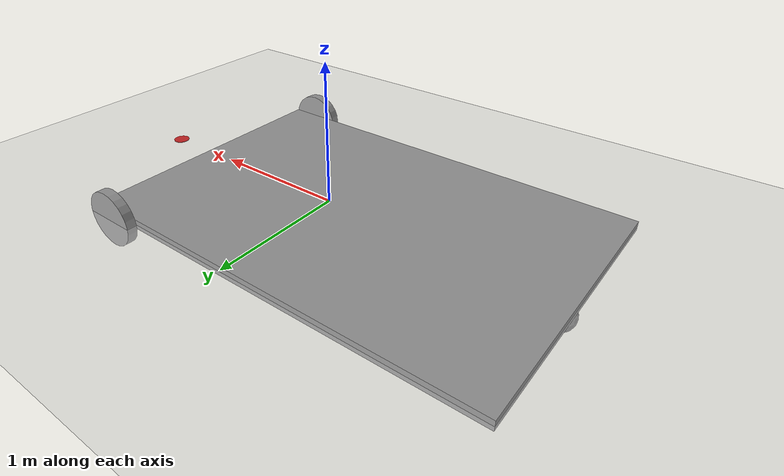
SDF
<sdf version='1.6'>
  <world name='default'>
    <light name='sun' type='directional'>
      <cast_shadows>1</cast_shadows>
      <pose frame=''>0 0 10 0 -0 0</pose>
      <diffuse>0.8 0.8 0.8 1</diffuse>
      <specular>0.2 0.2 0.2 1</specular>
      <attenuation>
        <range>1000</range>
        <constant>0.9</constant>
        <linear>0.01</linear>
        <quadratic>0.001</quadratic>
      </attenuation>
      <direction>-0.5 0.1 -0.9</direction>
    </light>
    <model name='ground_plane'>
      <static>1</static>
      <link name='link'>
        <collision name='collision'>
          <geometry>
            <plane>
              <normal>0 0 1</normal>
              <size>100 100</size>
            </plane>
          </geometry>
          <surface>
            <contact>
              <collide_bitmask>65535</collide_bitmask>
              <ode/>
            </contact>
            <friction>
              <ode>
                <mu>100</mu>
                <mu2>50</mu2>
              </ode>
              <torsional>
                <ode/>
              </torsional>
            </friction>
            <bounce/>
          </surface>
          <max_contacts>10</max_contacts>
        </collision>
        <visual name='visual'>
          <cast_shadows>0</cast_shadows>
          <geometry>
            <plane>
              <normal>0 0 1</normal>
              <size>100 100</size>
            </plane>
          </geometry>
          <material>
            <script>
              <uri>file://media/materials/scripts/gazebo.material</uri>
              <name>Gazebo/Grey</name>
            </script>
          </material>
        </visual>
        <self_collide>0</self_collide>
        <enable_wind>0</enable_wind>
        <kinematic>0</kinematic>
      </link>
    </model>
    <gravity>0 0 -9.8</gravity>
    <magnetic_field>6e-06 2.3e-05 -4.2e-05</magnetic_field>
    <atmosphere type='adiabatic'/>
    <physics name='default_physics' default='0' type='ode'>
      <max_step_size>0.001</max_step_size>
      <real_time_factor>1</real_time_factor>
      <real_time_update_rate>1000</real_time_update_rate>
    </physics>
    <scene>
      <ambient>0.4 0.4 0.4 1</ambient>
      <background>0.7 0.7 0.7 1</background>
      <shadows>1</shadows>
    </scene>
    <audio>
      <device>default</device>
    </audio>
    <wind/>
    <spherical_coordinates>
      <surface_model>EARTH_WGS84</surface_model>
      <latitude_deg>0</latitude_deg>
      <longitude_deg>0</longitude_deg>
      <elevation>0</elevation>
      <heading_deg>0</heading_deg>
    </spherical_coordinates>
    <model name='truck_bed'>
      <link name='link_0'>
        <inertial>
          <mass>10</mass>
          <inertia>
            <ixx>0.166667</ixx>
            <ixy>0</ixy>
            <ixz>0</ixz>
            <iyy>0.166667</iyy>
            <iyz>0</iyz>
            <izz>0.166667</izz>
          </inertia>
          <pose>0 0 0 0 -0 0</pose>
        </inertial>
        <pose>-0.300003 0.003755 0 0 -0 0</pose>
        <gravity>1</gravity>
        <self_collide>0</self_collide>
        <kinematic>0</kinematic>
        <enable_wind>0</enable_wind>
        <visual name='visual'>
          <pose>0 0 0 0 -0 0</pose>
          <geometry>
            <box>
              <size>3 2 0.07</size>
            </box>
          </geometry>
          <material>
            <lighting>1</lighting>
            <script>
              <uri>file://media/materials/scripts/gazebo.material</uri>
              <name>Gazebo/Grey</name>
            </script>
            <shader type='pixel'>
              <normal_map>__default__</normal_map>
            </shader>
            <ambient>0.3 0.3 0.3 1</ambient>
            <diffuse>0.7 0.7 0.7 1</diffuse>
            <specular>0.01 0.01 0.01 1</specular>
            <emissive>0 0 0 1</emissive>
          </material>
          <transparency>0</transparency>
          <cast_shadows>1</cast_shadows>
        </visual>
        <collision name='collision'>
          <laser_retro>0</laser_retro>
          <max_contacts>10</max_contacts>
          <pose>0 0 0 0 -0 0</pose>
          <geometry>
            <box>
              <size>3 2 0.07</size>
            </box>
          </geometry>
          <surface>
            <friction>
              <ode>
                <mu>100</mu>
                <mu2>100</mu2>
                <fdir1>0 0 0</fdir1>
                <slip1>0</slip1>
                <slip2>0</slip2>
              </ode>
              <torsional>
                <coefficient>1</coefficient>
                <patch_radius>0</patch_radius>
                <surface_radius>0</surface_radius>
                <use_patch_radius>1</use_patch_radius>
                <ode>
                  <slip>0</slip>
                </ode>
              </torsional>
            </friction>
            <bounce>
              <restitution_coefficient>0</restitution_coefficient>
              <threshold>1e+06</threshold>
            </bounce>
            <contact>
              <collide_without_contact>0</collide_without_contact>
              <collide_without_contact_bitmask>1</collide_without_contact_bitmask>
              <collide_bitmask>1</collide_bitmask>
              <ode>
                <soft_cfm>0</soft_cfm>
                <soft_erp>0.2</soft_erp>
                <kp>1e+13</kp>
                <kd>1</kd>
                <max_vel>0.01</max_vel>
                <min_depth>0</min_depth>
              </ode>
              <bullet>
                <split_impulse>1</split_impulse>
                <split_impulse_penetration_threshold>-0.01</split_impulse_penetration_threshold>
                <soft_cfm>0</soft_cfm>
                <soft_erp>0.2</soft_erp>
                <kp>1e+13</kp>
                <kd>1</kd>
              </bullet>
            </contact>
          </surface>
        </collision>
      </link>
      <link name='link_2_clone'>
        <inertial>
          <mass>5</mass>
          <inertia>
            <ixx>0.145833</ixx>
            <ixy>0</ixy>
            <ixz>0</ixz>
            <iyy>0.145833</iyy>
            <iyz>0</iyz>
            <izz>0.125</izz>
          </inertia>
          <pose>0 0 0 0 -0 0</pose>
        </inertial>
        <pose>0.999997 -1.03126 0 1.5707 -0 0</pose>
        <gravity>1</gravity>
        <self_collide>0</self_collide>
        <kinematic>0</kinematic>
        <enable_wind>0</enable_wind>
        <visual name='visual'>
          <pose>0 0 0 0 -0 0</pose>
          <geometry>
            <cylinder>
              <radius>0.2</radius>
              <length>0.07</length>
            </cylinder>
          </geometry>
          <material>
            <lighting>1</lighting>
            <script>
              <uri>file://media/materials/scripts/gazebo.material</uri>
              <name>Gazebo/Grey</name>
            </script>
            <shader type='pixel'>
              <normal_map>__default__</normal_map>
            </shader>
            <ambient>0.3 0.3 0.3 1</ambient>
            <diffuse>0.7 0.7 0.7 1</diffuse>
            <specular>0.01 0.01 0.01 1</specular>
            <emissive>0 0 0 1</emissive>
          </material>
          <transparency>0</transparency>
          <cast_shadows>1</cast_shadows>
        </visual>
        <collision name='collision'>
          <laser_retro>0</laser_retro>
          <max_contacts>10</max_contacts>
          <pose>0 0 0 0 -0 0</pose>
          <geometry>
            <cylinder>
              <radius>0.2</radius>
              <length>0.07</length>
            </cylinder>
          </geometry>
          <surface>
            <friction>
              <ode>
                <mu>100000</mu>
                <mu2>100000</mu2>
                <fdir1>0 0 0</fdir1>
                <slip1>0</slip1>
                <slip2>0</slip2>
              </ode>
              <torsional>
                <coefficient>1</coefficient>
                <patch_radius>0</patch_radius>
                <surface_radius>0</surface_radius>
                <use_patch_radius>1</use_patch_radius>
                <ode>
                  <slip>0</slip>
                </ode>
              </torsional>
            </friction>
            <bounce>
              <restitution_coefficient>0</restitution_coefficient>
              <threshold>1e+06</threshold>
            </bounce>
            <contact>
              <collide_without_contact>0</collide_without_contact>
              <collide_without_contact_bitmask>1</collide_without_contact_bitmask>
              <collide_bitmask>1</collide_bitmask>
              <ode>
                <soft_cfm>0</soft_cfm>
                <soft_erp>0.2</soft_erp>
                <kp>1e+13</kp>
                <kd>1</kd>
                <max_vel>0.01</max_vel>
                <min_depth>0</min_depth>
              </ode>
              <bullet>
                <split_impulse>1</split_impulse>
                <split_impulse_penetration_threshold>-0.01</split_impulse_penetration_threshold>
                <soft_cfm>0</soft_cfm>
                <soft_erp>0.2</soft_erp>
                <kp>1e+13</kp>
                <kd>1</kd>
              </bullet>
            </contact>
          </surface>
        </collision>
      </link>
      <link name='link_2_clone_clone'>
        <inertial>
          <mass>5</mass>
          <inertia>
            <ixx>0.145833</ixx>
            <ixy>0</ixy>
            <ixz>0</ixz>
            <iyy>0.145833</iyy>
            <iyz>0</iyz>
            <izz>0.125</izz>
          </inertia>
          <pose>0 0 0 0 -0 0</pose>
        </inertial>
        <pose>0.999997 1.04375 0 1.5707 -0 0</pose>
        <gravity>1</gravity>
        <self_collide>0</self_collide>
        <kinematic>0</kinematic>
        <enable_wind>0</enable_wind>
        <visual name='visual'>
          <pose>0 0 0 0 -0 0</pose>
          <geometry>
            <cylinder>
              <radius>0.2</radius>
              <length>0.07</length>
            </cylinder>
          </geometry>
          <material>
            <lighting>1</lighting>
            <script>
              <uri>file://media/materials/scripts/gazebo.material</uri>
              <name>Gazebo/Grey</name>
            </script>
            <shader type='pixel'>
              <normal_map>__default__</normal_map>
            </shader>
            <ambient>0.3 0.3 0.3 1</ambient>
            <diffuse>0.7 0.7 0.7 1</diffuse>
            <specular>0.01 0.01 0.01 1</specular>
            <emissive>0 0 0 1</emissive>
          </material>
          <transparency>0</transparency>
          <cast_shadows>1</cast_shadows>
        </visual>
        <collision name='collision'>
          <laser_retro>0</laser_retro>
          <max_contacts>10</max_contacts>
          <pose>0 0 0 0 -0 0</pose>
          <geometry>
            <cylinder>
              <radius>0.2</radius>
              <length>0.07</length>
            </cylinder>
          </geometry>
          <surface>
            <friction>
              <ode>
                <mu>100000</mu>
                <mu2>100000</mu2>
                <fdir1>0 0 0</fdir1>
                <slip1>0</slip1>
                <slip2>0</slip2>
              </ode>
              <torsional>
                <coefficient>1</coefficient>
                <patch_radius>0</patch_radius>
                <surface_radius>0</surface_radius>
                <use_patch_radius>1</use_patch_radius>
                <ode>
                  <slip>0</slip>
                </ode>
              </torsional>
            </friction>
            <bounce>
              <restitution_coefficient>0</restitution_coefficient>
              <threshold>1e+06</threshold>
            </bounce>
            <contact>
              <collide_without_contact>0</collide_without_contact>
              <collide_without_contact_bitmask>1</collide_without_contact_bitmask>
              <collide_bitmask>1</collide_bitmask>
              <ode>
                <soft_cfm>0</soft_cfm>
                <soft_erp>0.2</soft_erp>
                <kp>1e+13</kp>
                <kd>1</kd>
                <max_vel>0.01</max_vel>
                <min_depth>0</min_depth>
              </ode>
              <bullet>
                <split_impulse>1</split_impulse>
                <split_impulse_penetration_threshold>-0.01</split_impulse_penetration_threshold>
                <soft_cfm>0</soft_cfm>
                <soft_erp>0.2</soft_erp>
                <kp>1e+13</kp>
                <kd>1</kd>
              </bullet>
            </contact>
          </surface>
        </collision>
      </link>
      <link name='link_3'>
        <inertial>
          <mass>100</mass>
          <inertia>
            <ixx>0.1</ixx>
            <ixy>0</ixy>
            <ixz>0</ixz>
            <iyy>0.1</iyy>
            <iyz>0</iyz>
            <izz>0.1</izz>
          </inertia>
          <pose>0 0 0 0 -0 0</pose>
        </inertial>
        <pose>-1.7 -0.016245 -0.13 0 -0 0</pose>
        <gravity>1</gravity>
        <self_collide>0</self_collide>
        <kinematic>0</kinematic>
        <enable_wind>0</enable_wind>
        <visual name='visual'>
          <pose>0 0 0 0 -0 0</pose>
          <geometry>
            <sphere>
              <radius>0.1</radius>
            </sphere>
          </geometry>
          <material>
            <lighting>1</lighting>
            <script>
              <uri>file://media/materials/scripts/gazebo.material</uri>
              <name>Gazebo/Grey</name>
            </script>
            <shader type='pixel'>
              <normal_map>__default__</normal_map>
            </shader>
            <ambient>0.3 0.3 0.3 1</ambient>
            <diffuse>0.7 0.7 0.7 1</diffuse>
            <specular>0.01 0.01 0.01 1</specular>
            <emissive>0 0 0 1</emissive>
          </material>
          <transparency>0</transparency>
          <cast_shadows>1</cast_shadows>
        </visual>
        <collision name='collision'>
          <laser_retro>0</laser_retro>
          <max_contacts>10</max_contacts>
          <pose>0 0 0 0 -0 0</pose>
          <geometry>
            <sphere>
              <radius>0.1</radius>
            </sphere>
          </geometry>
          <surface>
            <friction>
              <ode>
                <mu>1000000</mu>
                <mu2>1000000</mu2>
                <fdir1>0 0 0</fdir1>
                <slip1>0</slip1>
                <slip2>0</slip2>
              </ode>
              <torsional>
                <coefficient>1</coefficient>
                <patch_radius>0</patch_radius>
                <surface_radius>0</surface_radius>
                <use_patch_radius>1</use_patch_radius>
                <ode>
                  <slip>0</slip>
                </ode>
              </torsional>
            </friction>
            <bounce>
              <restitution_coefficient>0</restitution_coefficient>
              <threshold>1e+06</threshold>
            </bounce>
            <contact>
              <collide_without_contact>0</collide_without_contact>
              <collide_without_contact_bitmask>1</collide_without_contact_bitmask>
              <collide_bitmask>1</collide_bitmask>
              <ode>
                <soft_cfm>0</soft_cfm>
                <soft_erp>0.2</soft_erp>
                <kp>1e+13</kp>
                <kd>1</kd>
                <max_vel>0.01</max_vel>
                <min_depth>0</min_depth>
              </ode>
              <bullet>
                <split_impulse>1</split_impulse>
                <split_impulse_penetration_threshold>-0.01</split_impulse_penetration_threshold>
                <soft_cfm>0</soft_cfm>
                <soft_erp>0.2</soft_erp>
                <kp>1e+13</kp>
                <kd>1</kd>
              </bullet>
            </contact>
          </surface>
        </collision>
      </link>
      <joint name='link_0_JOINT_1' type='fixed'>
        <parent>link_0</parent>
        <child>link_2_clone</child>
        <pose>0 0 0 0 -0 0</pose>
        <physics>
          <ode>
            <limit>
              <cfm>0</cfm>
              <erp>0.2</erp>
            </limit>
            <suspension>
              <cfm>0</cfm>
              <erp>0.2</erp>
            </suspension>
          </ode>
        </physics>
      </joint>
      <joint name='link_0_JOINT_2' type='fixed'>
        <parent>link_0</parent>
        <child>link_2_clone_clone</child>
        <pose>0 0 0 0 -0 0</pose>
        <physics>
          <ode>
            <limit>
              <cfm>0</cfm>
              <erp>0.2</erp>
            </limit>
            <suspension>
              <cfm>0</cfm>
              <erp>0.2</erp>
            </suspension>
          </ode>
        </physics>
      </joint>
      <joint name='link_0_JOINT_3' type='ball'>
        <parent>link_0</parent>
        <child>link_3</child>
        <pose>0 0 0 0 -0 0</pose>
        <physics>
          <ode>
            <limit>
              <cfm>0</cfm>
              <erp>0.2</erp>
            </limit>
            <suspension>
              <cfm>0</cfm>
              <erp>0.2</erp>
            </suspension>
          </ode>
        </physics>
      </joint>
      <static>0</static>
      <allow_auto_disable>1</allow_auto_disable>
    </model>
    <model name='spigot_hole'>
      <link name='link'>
        <inertial>
          <mass>5</mass>
          <inertia>
            <ixx>0.145833</ixx>
            <ixy>0</ixy>
            <ixz>0</ixz>
            <iyy>0.145833</iyy>
            <iyz>0</iyz>
            <izz>0.125</izz>
          </inertia>
          <pose>0 -0.0 0 0 -0 0</pose>
        </inertial>
        <self_collide>0</self_collide>
        <enable_wind>0</enable_wind>
        <kinematic>0</kinematic>
        <pose>1.6 0.0 0 0 0 0</pose>
        <gravity>1</gravity>
        <visual name='visual'>
          <geometry>
            <cylinder>
              <radius>0.06</radius>
              <length>0.005</length>
            </cylinder>
          </geometry>
          <material>
            <script>
              <name>Gazebo/Red</name>
              <uri>file://media/materials/scripts/gazebo.material</uri>
            </script>
            <shader type='pixel'>
              <normal_map>__default__</normal_map>
            </shader>
            <ambient>1 0 0 1</ambient>
            <diffuse>0.7 0.7 0.7 1</diffuse>
            <specular>0.01 0.01 0.01 1</specular>
            <emissive>0 0 0 1</emissive>
          </material>
          <pose>0.0 0 0 0 -0 0</pose>
          <transparency>0</transparency>
          <cast_shadows>1</cast_shadows>
        </visual>
        <collision name='collision'>
          <laser_retro>0</laser_retro>
          <max_contacts>10</max_contacts>
          <pose>0 0 0 0 -0 0</pose>
          <geometry>
            <cylinder>
              <radius>0.06</radius>
              <length>0.03</length>
            </cylinder>
          </geometry>
          <surface>
            <friction>
              <ode>
                <mu>10000</mu>
                <mu2>10000</mu2>
                <fdir1>0 0 0</fdir1>
                <slip1>0</slip1>
                <slip2>0</slip2>
              </ode>
              <torsional>
                <coefficient>1</coefficient>
                <patch_radius>0</patch_radius>
                <surface_radius>0</surface_radius>
                <use_patch_radius>1</use_patch_radius>
                <ode>
                  <slip>0</slip>
                </ode>
              </torsional>
            </friction>
            <bounce>
              <restitution_coefficient>0</restitution_coefficient>
              <threshold>1e+06</threshold>
            </bounce>
            <contact>
              <collide_without_contact>0</collide_without_contact>
              <collide_without_contact_bitmask>1</collide_without_contact_bitmask>
              <collide_bitmask>1</collide_bitmask>
              <ode>
                <soft_cfm>0</soft_cfm>
                <soft_erp>0.2</soft_erp>
                <kp>1e+13</kp>
                <kd>1</kd>
                <max_vel>0.01</max_vel>
                <min_depth>0</min_depth>
              </ode>
              <bullet>
                <split_impulse>1</split_impulse>
                <split_impulse_penetration_threshold>-0.01</split_impulse_penetration_threshold>
                <soft_cfm>0</soft_cfm>
                <soft_erp>0.2</soft_erp>
                <kp>1e+13</kp>
                <kd>1</kd>
              </bullet>
            </contact>
          </surface>
        </collision>
      </link>
      <static>0</static>
      <allow_auto_disable>1</allow_auto_disable>
    </model>
  </world>
</sdf>
